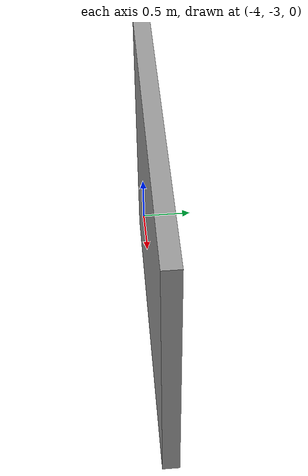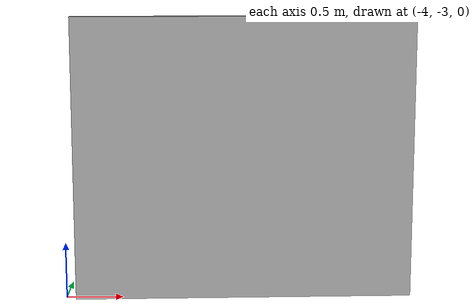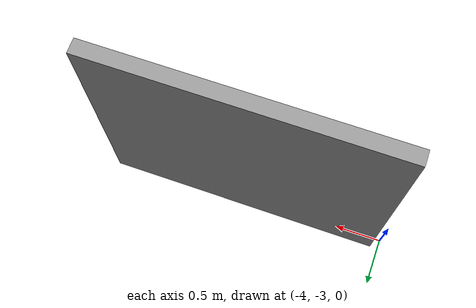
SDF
<?xml version='1.0'?>
<sdf version='1.6'>
  <model name='wall_3m'>
    <pose frame=''>-2.415 -2.98 0 0 -0 0</pose>
    <link name='Wall_0'>
      <collision name='Wall_0_Collision'>
        <geometry>
          <box>
            <size>3 0.15 2.5</size>
          </box>
        </geometry>
        <pose frame=''>0 0 1.25 0 -0 0</pose>
      </collision>
      <visual name='Wall_0_Visual'>
        <pose frame=''>0 0 1.25 0 -0 0</pose>
        <geometry>
          <box>
            <size>3 0.15 2.5</size>
          </box>
        </geometry>
        <material>
          <script>
            <uri>file://media/materials/scripts/gazebo.material</uri>
            <name>Gazebo/Grey</name>
          </script>
          <ambient>1 1 1 1</ambient>
        </material>
        <meta>
          <layer>0</layer>
        </meta>
      </visual>
      <pose frame=''>0 0 0 0 -0 3.14159</pose>
    </link>
    <static>1</static>
  </model>
</sdf>
